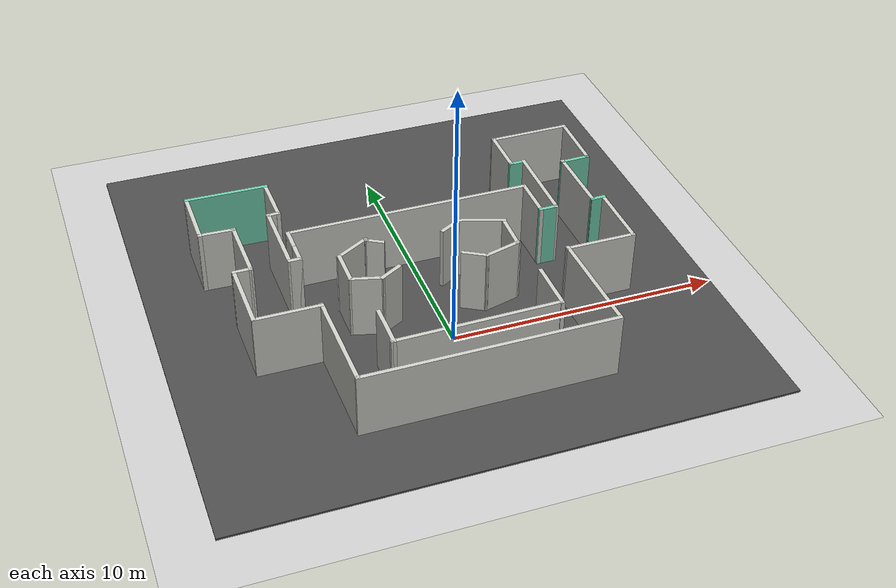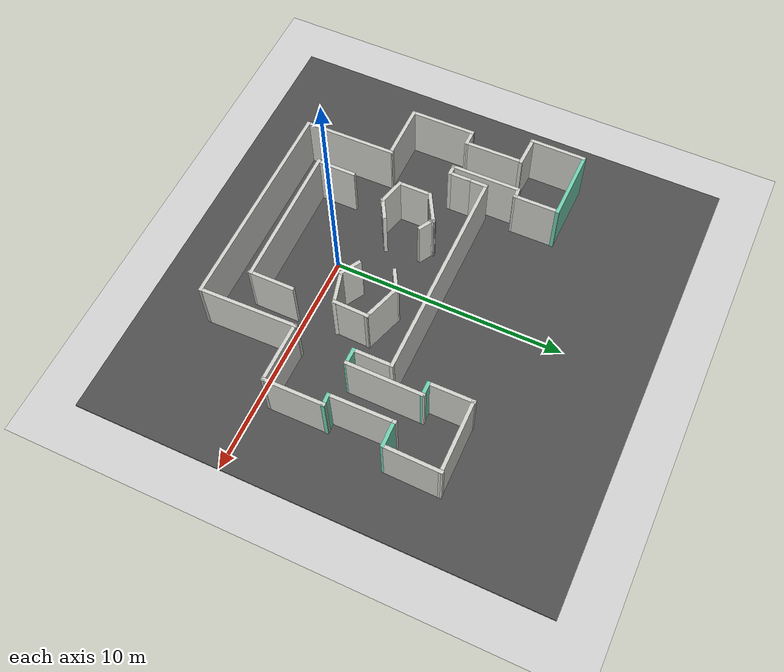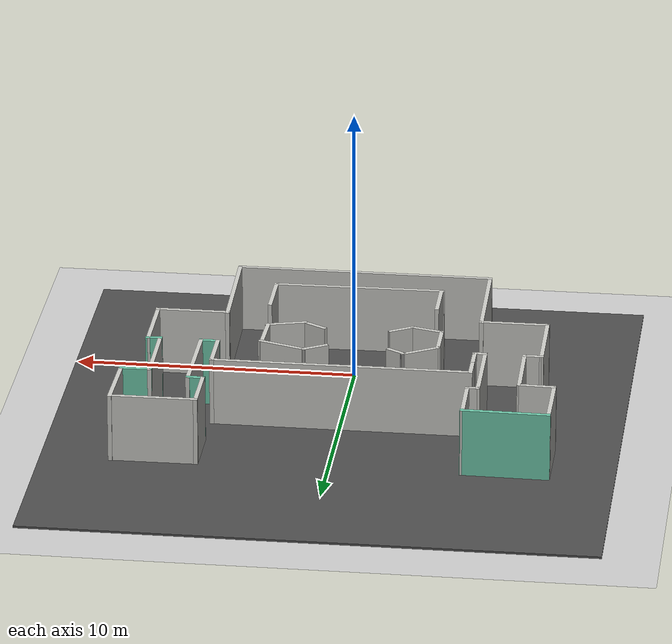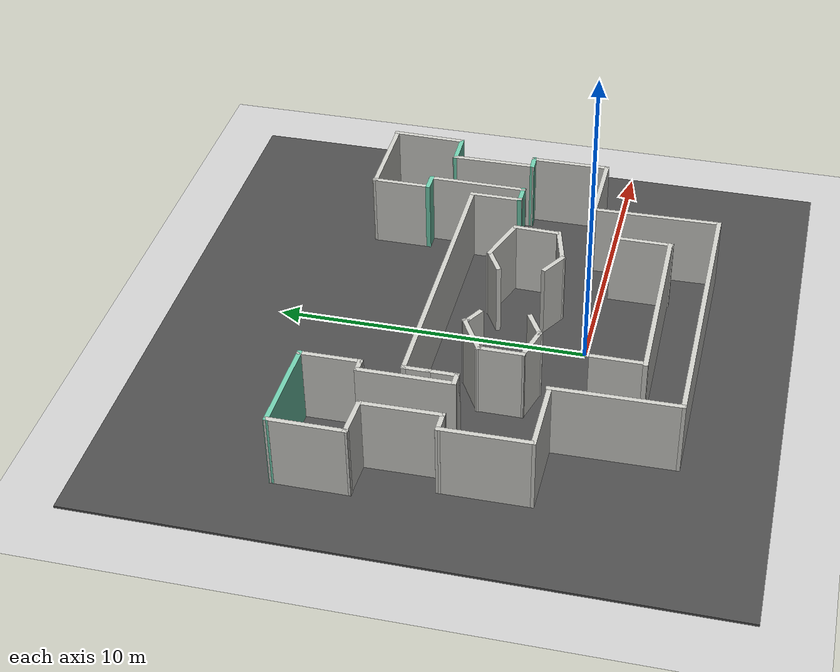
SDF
<sdf version="1.6">
 <world name="default">
  <light name="sun" type="directional">
   <pose>0 0 10 0 -0 0</pose>
   <diffuse>0.8 0.8 0.8 1</diffuse>
   <specular>0.2 0.2 0.2 1</specular>
   <attenuation>
    <range>1000</range>
    <constant>0.9</constant>
    <linear>0.01</linear>
    <quadratic>0.001</quadratic>
   </attenuation>
   <direction>-0.5 0.1 -0.9</direction>
  </light>
  <model name="ground_plane">
   <static>1</static>
   <link name="link">
    <collision name="collision">
     <geometry><plane><normal>0 0 1</normal><size>100 100</size></plane></geometry>
     <surface>
      <contact><collide_bitmask>65535</collide_bitmask></contact>
      <friction><ode><mu>100</mu><mu2>50</mu2></ode></friction>
     </surface>
    </collision>
    <visual name="visual">
     <cast_shadows>0</cast_shadows>
     <geometry><plane><normal>0 0 1</normal><size>100 100</size></plane></geometry>
     <material>
      <script><uri>file://media/materials/scripts/gazebo.material</uri><name>Gazebo/Grey</name></script>
     </material>
    </visual>
   </link>
  </model>
  <gravity>0 0 -9.8</gravity>
  <magnetic_field>6e-06 2.3e-05 -4.2e-05</magnetic_field>
  <atmosphere type="adiabatic"/>
  <physics name="default_physics" default="0" type="ode">
   <max_step_size>0.001</max_step_size>
   <real_time_factor>1</real_time_factor>
   <real_time_update_rate>1000</real_time_update_rate>
  </physics>
  <scene><ambient>0.4 0.4 0.4 1</ambient><background>0.7 0.7 0.7 1</background><shadows>1</shadows></scene>
  <spherical_coordinates>
   <surface_model>EARTH_WGS84</surface_model>
   <latitude_deg>0</latitude_deg>
   <longitude_deg>0</longitude_deg>
   <elevation>0</elevation>
   <heading_deg>0</heading_deg>
  </spherical_coordinates>
  <model name="ROBO_WORLD">
   <pose>-0.02375 2.26092 0 0 -0 0</pose>
   <link name="Wall_0">
    <collision name="Wall_0_Collision">
     <geometry><box><size>1 0.15 2.5</size></box></geometry>
     <pose>0 0 1.25 0 -0 0</pose>
    </collision>
    <visual name="Wall_0_Visual">
     <pose>0 0 1.25 0 -0 0</pose>
     <geometry><box><size>1 0.15 2.5</size></box></geometry>
     <material>
      <script><uri>file://media/materials/scripts/gazebo.material</uri><name>Gazebo/CeilingTiled</name></script>
      <ambient>0.435294 0.796078 0.67451 1</ambient>
     </material>
     <meta><layer>0</layer></meta>
    </visual>
    <pose>-4.59188 1.20908 0 0 -0 -1.5708</pose>
   </link>
   <link name="Wall_1">
    <collision name="Wall_1_Collision">
     <geometry><box><size>0.503386 0.15 2.5</size></box></geometry>
     <pose>0 0 1.25 0 -0 0</pose>
    </collision>
    <visual name="Wall_1_Visual">
     <pose>0 0 1.25 0 -0 0</pose>
     <geometry><box><size>0.503386 0.15 2.5</size></box></geometry>
     <material>
      <script><uri>file://media/materials/scripts/gazebo.material</uri><name>Gazebo/CeilingTiled</name></script>
      <ambient>0.435294 0.796078 0.67451 1</ambient>
     </material>
     <meta><layer>0</layer></meta>
    </visual>
    <pose>-4.76857 0.78408 0 0 -0 3.14159</pose>
   </link>
   <link name="Wall_10">
    <collision name="Wall_10_Collision">
     <geometry><box><size>2.83268 0.15 2.5</size></box></geometry>
     <pose>0 0 1.25 0 -0 0</pose>
    </collision>
    <visual name="Wall_10_Visual">
     <pose>0 0 1.25 0 -0 0</pose>
     <geometry><box><size>2.83268 0.15 2.5</size></box></geometry>
     <material>
      <script><uri>file://media/materials/scripts/gazebo.material</uri><name>Gazebo/CeilingTiled</name></script>
      <ambient>0.435294 0.796078 0.67451 1</ambient>
     </material>
     <meta><layer>0</layer></meta>
    </visual>
    <pose>-6.93101 -0.557216 0 0 -0 -1.56269</pose>
   </link>
   <link name="Wall_11">
    <collision name="Wall_11_Collision">
     <geometry><box><size>2.5 0.15 2.5</size></box></geometry>
     <pose>0 0 1.25 0 -0 0</pose>
    </collision>
    <visual name="Wall_11_Visual">
     <pose>0 0 1.25 0 -0 0</pose>
     <geometry><box><size>2.5 0.15 2.5</size></box></geometry>
     <material>
      <script><uri>file://media/materials/scripts/gazebo.material</uri><name>Gazebo/CeilingTiled</name></script>
      <ambient>0.435294 0.796078 0.67451 1</ambient>
     </material>
     <meta><layer>0</layer></meta>
    </visual>
    <pose>-5.74514 -1.93094 0 0 -0 0</pose>
   </link>
   <link name="Wall_12">
    <collision name="Wall_12_Collision">
     <geometry><box><size>3.99317 0.15 2.5</size></box></geometry>
     <pose>0 0 1.25 0 -0 0</pose>
    </collision>
    <visual name="Wall_12_Visual">
     <pose>0 0 1.25 0 -0 0</pose>
     <geometry><box><size>3.99317 0.15 2.5</size></box></geometry>
     <material>
      <script><uri>file://media/materials/scripts/gazebo.material</uri><name>Gazebo/CeilingTiled</name></script>
      <ambient>0.435294 0.796078 0.67451 1</ambient>
     </material>
     <meta><layer>0</layer></meta>
    </visual>
    <pose>-4.54298 -3.8199 0 0 -0 -1.55666</pose>
   </link>
   <link name="Wall_13">
    <collision name="Wall_13_Collision">
     <geometry><box><size>9.25 0.15 2.5</size></box></geometry>
     <pose>0 0 1.25 0 -0 0</pose>
    </collision>
    <visual name="Wall_13_Visual">
     <pose>0 0 1.25 0 -0 0</pose>
     <geometry><box><size>9.25 0.15 2.5</size></box></geometry>
     <material>
      <script><uri>file://media/materials/scripts/gazebo.material</uri><name>Gazebo/CeilingTiled</name></script>
      <ambient>0.435294 0.796078 0.67451 1</ambient>
     </material>
     <meta><layer>0</layer></meta>
    </visual>
    <pose>0.034181 -5.77933 0 0 -0 0</pose>
   </link>
   <link name="Wall_14">
    <collision name="Wall_14_Collision">
     <geometry><box><size>4.21004 0.15 2.5</size></box></geometry>
     <pose>0 0 1.25 0 -0 0</pose>
    </collision>
    <visual name="Wall_14_Visual">
     <pose>0 0 1.25 0 -0 0</pose>
     <geometry><box><size>4.21004 0.15 2.5</size></box></geometry>
     <material>
      <script><uri>file://media/materials/scripts/gazebo.material</uri><name>Gazebo/CeilingTiled</name></script>
      <ambient>0.435294 0.796078 0.67451 1</ambient>
     </material>
     <meta><layer>0</layer></meta>
    </visual>
    <pose>4.54081 -3.71174 0 0 -0 1.59216</pose>
   </link>
   <link name="Wall_15">
    <collision name="Wall_15_Collision">
     <geometry><box><size>2.6522 0.15 2.5</size></box></geometry>
     <pose>0 0 1.25 0 -0 0</pose>
    </collision>
    <visual name="Wall_15_Visual">
     <pose>0 0 1.25 0 -0 0</pose>
     <geometry><box><size>2.6522 0.15 2.5</size></box></geometry>
     <material>
      <script><uri>file://media/materials/scripts/gazebo.material</uri><name>Gazebo/CeilingTiled</name></script>
      <ambient>0.435294 0.796078 0.67451 1</ambient>
     </material>
     <meta><layer>0</layer></meta>
    </visual>
    <pose>5.74853 -1.71462 0 0 -0 0</pose>
   </link>
   <link name="Wall_16">
    <collision name="Wall_16_Collision">
     <geometry><box><size>2.61629 0.15 2.5</size></box></geometry>
     <pose>0 0 1.25 0 -0 0</pose>
    </collision>
    <visual name="Wall_16_Visual">
     <pose>0 0 1.25 0 -0 0</pose>
     <geometry><box><size>2.61629 0.15 2.5</size></box></geometry>
     <material>
      <script><uri>file://media/materials/scripts/gazebo.material</uri><name>Gazebo/CeilingTiled</name></script>
      <ambient>0.435294 0.796078 0.67451 1</ambient>
     </material>
     <meta><layer>0</layer></meta>
    </visual>
    <pose>6.99411 -0.449054 0 0 -0 1.57528</pose>
   </link>
   <link name="Wall_17">
    <collision name="Wall_17_Collision">
     <geometry><box><size>0.598328 0.15 2.5</size></box></geometry>
     <pose>0 0 1.25 0 -0 0</pose>
    </collision>
    <visual name="Wall_17_Visual">
     <pose>0 0 1.25 0 -0 0</pose>
     <geometry><box><size>0.598328 0.15 2.5</size></box></geometry>
     <material>
      <script><uri>file://media/materials/scripts/gazebo.material</uri><name>Gazebo/Grey</name></script>
      <ambient>0.435294 0.796078 0.67451 1</ambient>
     </material>
     <meta><layer>0</layer></meta>
    </visual>
    <pose>6.78642 0.773209 0 0 -0 -3.09308</pose>
   </link>
   <link name="Wall_18">
    <collision name="Wall_18_Collision">
     <geometry><box><size>2.81541 0.15 2.5</size></box></geometry>
     <pose>0 0 1.25 0 -0 0</pose>
    </collision>
    <visual name="Wall_18_Visual">
     <pose>0 0 1.25 0 -0 0</pose>
     <geometry><box><size>2.81541 0.15 2.5</size></box></geometry>
     <material>
      <script><uri>file://media/materials/scripts/gazebo.material</uri><name>Gazebo/CeilingTiled</name></script>
      <ambient>0.435294 0.796078 0.67451 1</ambient>
     </material>
     <meta><layer>0</layer></meta>
    </visual>
    <pose>6.55165 2.11674 0 0 -0 1.57895</pose>
   </link>
   <link name="Wall_19">
    <collision name="Wall_19_Collision">
     <geometry><box><size>1.16405 0.15 2.5</size></box></geometry>
     <pose>0 0 1.25 0 -0 0</pose>
    </collision>
    <visual name="Wall_19_Visual">
     <pose>0 0 1.25 0 -0 0</pose>
     <geometry><box><size>1.16405 0.15 2.5</size></box></geometry>
     <material>
      <script><uri>file://media/materials/scripts/gazebo.material</uri><name>Gazebo/Grey</name></script>
      <ambient>0.435294 0.796078 0.67451 1</ambient>
     </material>
     <meta><layer>0</layer></meta>
    </visual>
    <pose>7.04734 3.43853 0 0 -0 0.021459</pose>
   </link>
   <link name="Wall_2">
    <collision name="Wall_2_Collision">
     <geometry><box><size>3.03921 0.15 2.5</size></box></geometry>
     <pose>0 0 1.25 0 -0 0</pose>
    </collision>
    <visual name="Wall_2_Visual">
     <pose>0 0 1.25 0 -0 0</pose>
     <geometry><box><size>3.03921 0.15 2.5</size></box></geometry>
     <material>
      <script><uri>file://media/materials/scripts/gazebo.material</uri><name>Gazebo/CeilingTiled</name></script>
      <ambient>0.435294 0.796078 0.67451 1</ambient>
     </material>
     <meta><layer>0</layer></meta>
    </visual>
    <pose>-4.96993 2.22866 0 0 -0 1.57649</pose>
   </link>
   <link name="Wall_20">
    <collision name="Wall_20_Collision">
     <geometry><box><size>2.45719 0.15 2.5</size></box></geometry>
     <pose>0 0 1.25 0 -0 0</pose>
    </collision>
    <visual name="Wall_20_Visual">
     <pose>0 0 1.25 0 -0 0</pose>
     <geometry><box><size>2.45719 0.15 2.5</size></box></geometry>
     <material>
      <script><uri>file://media/materials/scripts/gazebo.material</uri><name>Gazebo/CeilingTiled</name></script>
      <ambient>0.435294 0.796078 0.67451 1</ambient>
     </material>
     <meta><layer>0</layer></meta>
    </visual>
    <pose>7.57564 4.62453 0 0 -0 1.55195</pose>
   </link>
   <link name="Wall_21">
    <collision name="Wall_21_Collision">
     <geometry><box><size>3.14154 0.15 2.5</size></box></geometry>
     <pose>0 0 1.25 0 -0 0</pose>
    </collision>
    <visual name="Wall_21_Visual">
     <pose>0 0 1.25 0 -0 0</pose>
     <geometry><box><size>3.14154 0.15 2.5</size></box></geometry>
     <material>
      <script><uri>file://media/materials/scripts/gazebo.material</uri><name>Gazebo/CeilingTiled</name></script>
      <ambient>0.435294 0.796078 0.67451 1</ambient>
     </material>
     <meta><layer>0</layer></meta>
    </visual>
    <pose>6.10165 5.74531 0 0 -0 -3.13432</pose>
   </link>
   <link name="Wall_22">
    <collision name="Wall_22_Collision">
     <geometry><box><size>1.95669 0.15 2.5</size></box></geometry>
     <pose>0 0 1.25 0 -0 0</pose>
    </collision>
    <visual name="Wall_22_Visual">
     <pose>0 0 1.25 0 -0 0</pose>
     <geometry><box><size>1.95669 0.15 2.5</size></box></geometry>
     <material>
      <script><uri>file://media/materials/scripts/gazebo.material</uri><name>Gazebo/CeilingTiled</name></script>
      <ambient>0.435294 0.796078 0.67451 1</ambient>
     </material>
     <meta><layer>0</layer></meta>
    </visual>
    <pose>4.60592 4.85283 0 0 -0 -1.5708</pose>
   </link>
   <link name="Wall_23">
    <collision name="Wall_23_Collision">
     <geometry><box><size>0.673945 0.15 2.5</size></box></geometry>
     <pose>0 0 1.25 0 -0 0</pose>
    </collision>
    <visual name="Wall_23_Visual">
     <pose>0 0 1.25 0 -0 0</pose>
     <geometry><box><size>0.673945 0.15 2.5</size></box></geometry>
     <material>
      <script><uri>file://media/materials/scripts/gazebo.material</uri><name>Gazebo/Grey</name></script>
      <ambient>0.435294 0.796078 0.67451 1</ambient>
     </material>
     <meta><layer>0</layer></meta>
    </visual>
    <pose>4.86789 3.92775 0 0 -0 0</pose>
   </link>
   <link name="Wall_24">
    <collision name="Wall_24_Collision">
     <geometry><box><size>3.31548 0.15 2.5</size></box></geometry>
     <pose>0 0 1.25 0 -0 0</pose>
    </collision>
    <visual name="Wall_24_Visual">
     <pose>0 0 1.25 0 -0 0</pose>
     <geometry><box><size>3.31548 0.15 2.5</size></box></geometry>
     <material>
      <script><uri>file://media/materials/scripts/gazebo.material</uri><name>Gazebo/CeilingTiled</name></script>
      <ambient>0.435294 0.796078 0.67451 1</ambient>
     </material>
     <meta><layer>0</layer></meta>
    </visual>
    <pose>5.11899 2.36678 0 0 -0 -1.57767</pose>
   </link>
   <link name="Wall_25">
    <collision name="Wall_25_Collision">
     <geometry><box><size>0.75 0.15 2.5</size></box></geometry>
     <pose>0 0 1.25 0 -0 0</pose>
    </collision>
    <visual name="Wall_25_Visual">
     <pose>0 0 1.25 0 -0 0</pose>
     <geometry><box><size>0.75 0.15 2.5</size></box></geometry>
     <material>
      <script><uri>file://media/materials/scripts/gazebo.material</uri><name>Gazebo/Grey</name></script>
      <ambient>0.435294 0.796078 0.67451 1</ambient>
     </material>
     <meta><layer>0</layer></meta>
    </visual>
    <pose>4.80812 0.78408 0 0 -0 3.14159</pose>
   </link>
   <link name="Wall_26">
    <collision name="Wall_26_Collision">
     <geometry><box><size>1.75 0.15 2.5</size></box></geometry>
     <pose>0 0 1.25 0 -0 0</pose>
    </collision>
    <visual name="Wall_26_Visual">
     <pose>0 0 1.25 0 -0 0</pose>
     <geometry><box><size>1.75 0.15 2.5</size></box></geometry>
     <material>
      <script><uri>file://media/materials/scripts/gazebo.material</uri><name>Gazebo/CeilingTiled</name></script>
      <ambient>0.435294 0.796078 0.67451 1</ambient>
     </material>
     <meta><layer>0</layer></meta>
    </visual>
    <pose>4.50812 1.58408 0 0 -0 1.5708</pose>
   </link>
   <link name="Wall_27">
    <collision name="Wall_27_Collision">
     <geometry><box><size>9.25 0.15 2.5</size></box></geometry>
     <pose>0 0 1.25 0 -0 0</pose>
    </collision>
    <visual name="Wall_27_Visual">
     <pose>0 0 1.25 0 -0 0</pose>
     <geometry><box><size>9.25 0.15 2.5</size></box></geometry>
     <material>
      <script><uri>file://media/materials/scripts/gazebo.material</uri><name>Gazebo/CeilingTiled</name></script>
      <ambient>0.435294 0.796078 0.67451 1</ambient>
     </material>
     <meta><layer>0</layer></meta>
    </visual>
    <pose>-0.041879 2.38408 0 0 -0 3.14159</pose>
   </link>
   <link name="Wall_28">
    <collision name="Wall_28_Collision">
     <geometry><box><size>0.9 0.15 2.5</size></box></geometry>
     <pose>0 0 1.25 0 -0 0</pose>
    </collision>
    <visual name="Wall_28_Visual">
     <pose>0 0 1.25 0 -0 0</pose>
     <geometry><box><size>0.9 0.15 2.5</size></box></geometry>
     <material>
      <script><uri>file://media/materials/scripts/gazebo.material</uri><name>Gazebo/CeilingTiled</name></script>
      <ambient>0.435294 0.796078 0.67451 1</ambient>
     </material>
     <meta><layer>0</layer></meta>
    </visual>
    <pose>-4.59188 2.00908 0 0 -0 -1.5708</pose>
   </link>
   <link name="Wall_3">
    <collision name="Wall_3_Collision">
     <geometry><box><size>0.503768 0.15 2.5</size></box></geometry>
     <pose>0 0 1.25 0 -0 0</pose>
    </collision>
    <visual name="Wall_3_Visual">
     <pose>0 0 1.25 0 -0 0</pose>
     <geometry><box><size>0.503768 0.15 2.5</size></box></geometry>
     <material>
      <script><uri>file://media/materials/scripts/gazebo.material</uri><name>Gazebo/CeilingTiled</name></script>
      <ambient>0.435294 0.796078 0.67451 1</ambient>
     </material>
     <meta><layer>0</layer></meta>
    </visual>
    <pose>-4.78501 3.68146 0 0 -0 0.04649</pose>
   </link>
   <link name="Wall_35">
    <collision name="Wall_35_Collision">
     <geometry><box><size>1.80867 0.15 2.5</size></box></geometry>
     <pose>0 0 1.25 0 -0 0</pose>
    </collision>
    <visual name="Wall_35_Visual">
     <pose>0 0 1.25 0 -0 0</pose>
     <geometry><box><size>1.80867 0.15 2.5</size></box></geometry>
     <material>
      <script><uri>file://media/materials/scripts/gazebo.material</uri><name>Gazebo/CeilingTiled</name></script>
      <ambient>1 1 1 1</ambient>
     </material>
     <meta><layer>0</layer></meta>
    </visual>
    <pose>2.20681 0.865224 0 0 -0 -0.317813</pose>
   </link>
   <link name="Wall_36">
    <collision name="Wall_36_Collision">
     <geometry><box><size>1.56828 0.15 2.5</size></box></geometry>
     <pose>0 0 1.25 0 -0 0</pose>
    </collision>
    <visual name="Wall_36_Visual">
     <pose>0 0 1.25 0 -0 0</pose>
     <geometry><box><size>1.56828 0.15 2.5</size></box></geometry>
     <material>
      <script><uri>file://media/materials/scripts/gazebo.material</uri><name>Gazebo/CeilingTiled</name></script>
      <ambient>1 1 1 1</ambient>
     </material>
     <meta><layer>0</layer></meta>
    </visual>
    <pose>2.94693 -0.102805 0 0 -0 -1.59826</pose>
   </link>
   <link name="Wall_37">
    <collision name="Wall_37_Collision">
     <geometry><box><size>1.5 0.15 2.5</size></box></geometry>
     <pose>0 0 1.25 0 -0 0</pose>
    </collision>
    <visual name="Wall_37_Visual">
     <pose>0 0 1.25 0 -0 0</pose>
     <geometry><box><size>1.5 0.15 2.5</size></box></geometry>
     <material>
      <script><uri>file://media/materials/scripts/gazebo.material</uri><name>Gazebo/CeilingTiled</name></script>
      <ambient>1 1 1 1</ambient>
     </material>
     <meta><layer>0</layer></meta>
    </visual>
    <pose>2.30366 -0.986379 0 0 -0 -2.87979</pose>
   </link>
   <link name="Wall_39">
    <collision name="Wall_39_Collision">
     <geometry><box><size>1.75 0.15 2.5</size></box></geometry>
     <pose>0 0 1.25 0 -0 0</pose>
    </collision>
    <visual name="Wall_39_Visual">
     <pose>0 0 1.25 0 -0 0</pose>
     <geometry><box><size>1.75 0.15 2.5</size></box></geometry>
     <material>
      <script><uri>file://media/materials/scripts/gazebo.material</uri><name>Gazebo/CeilingTiled</name></script>
      <ambient>1 1 1 1</ambient>
     </material>
     <meta><layer>0</layer></meta>
    </visual>
    <pose>-2.88091 -3.66413 0 0 -0 -1.5708</pose>
   </link>
   <link name="Wall_4">
    <collision name="Wall_4_Collision">
     <geometry><box><size>2.00355 0.15 2.5</size></box></geometry>
     <pose>0 0 1.25 0 -0 0</pose>
    </collision>
    <visual name="Wall_4_Visual">
     <pose>0 0 1.25 0 -0 0</pose>
     <geometry><box><size>2.00355 0.15 2.5</size></box></geometry>
     <material>
      <script><uri>file://media/materials/scripts/gazebo.material</uri><name>Gazebo/CeilingTiled</name></script>
      <ambient>0.435294 0.796078 0.67451 1</ambient>
     </material>
     <meta><layer>0</layer></meta>
    </visual>
    <pose>-4.61654 4.59969 0 0 -0 1.57967</pose>
   </link>
   <link name="Wall_40">
    <collision name="Wall_40_Collision">
     <geometry><box><size>6.1526 0.15 2.5</size></box></geometry>
     <pose>0 0 1.25 0 -0 0</pose>
    </collision>
    <visual name="Wall_40_Visual">
     <pose>0 0 1.25 0 -0 0</pose>
     <geometry><box><size>6.1526 0.15 2.5</size></box></geometry>
     <material>
      <script><uri>file://media/materials/scripts/gazebo.material</uri><name>Gazebo/CeilingTiled</name></script>
      <ambient>1 1 1 1</ambient>
     </material>
     <meta><layer>0</layer></meta>
    </visual>
    <pose>0.08212 -4.4261 0 0 -0 0.012671</pose>
   </link>
   <link name="Wall_41">
    <collision name="Wall_41_Collision">
     <geometry><box><size>2 0.15 2.5</size></box></geometry>
     <pose>0 0 1.25 0 -0 0</pose>
    </collision>
    <visual name="Wall_41_Visual">
     <pose>0 0 1.25 0 -0 0</pose>
     <geometry><box><size>2 0.15 2.5</size></box></geometry>
     <material>
      <script><uri>file://media/materials/scripts/gazebo.material</uri><name>Gazebo/CeilingTiled</name></script>
      <ambient>1 1 1 1</ambient>
     </material>
     <meta><layer>0</layer></meta>
    </visual>
    <pose>3.08318 -3.5011 0 0 -0 1.5708</pose>
   </link>
   <link name="Wall_5">
    <collision name="Wall_5_Collision">
     <geometry><box><size>3.13799 0.15 2.5</size></box></geometry>
     <pose>0 0 1.25 0 -0 0</pose>
    </collision>
    <visual name="Wall_5_Visual">
     <pose>0 0 1.25 0 -0 0</pose>
     <geometry><box><size>3.13799 0.15 2.5</size></box></geometry>
     <material>
      <script><uri>file://media/materials/scripts/gazebo.material</uri><name>Gazebo/Grey</name></script>
      <ambient>0.435294 0.796078 0.67451 1</ambient>
     </material>
     <meta><layer>0</layer></meta>
    </visual>
    <pose>-6.10222 5.5508 0 0 -0 3.12509</pose>
   </link>
   <link name="Wall_53">
    <collision name="Wall_53_Collision">
     <geometry><box><size>1 0.15 2.5</size></box></geometry>
     <pose>0 0 1.25 0 -0 0</pose>
    </collision>
    <visual name="Wall_53_Visual">
     <pose>0 0 1.25 0 -0 0</pose>
     <geometry><box><size>1 0.15 2.5</size></box></geometry>
     <material>
      <script><uri>file://media/materials/scripts/gazebo.material</uri><name>Gazebo/CeilingTiled</name></script>
      <ambient>1 1 1 1</ambient>
     </material>
     <meta><layer>0</layer></meta>
    </visual>
    <pose>1.05095 0.911882 0 0 -0 -2.61799</pose>
   </link>
   <link name="Wall_55">
    <collision name="Wall_55_Collision">
     <geometry><box><size>1 0.15 2.5</size></box></geometry>
     <pose>0 0 1.25 0 -0 0</pose>
    </collision>
    <visual name="Wall_55_Visual">
     <pose>0 0 1.25 0 -0 0</pose>
     <geometry><box><size>1 0.15 2.5</size></box></geometry>
     <material>
      <script><uri>file://media/materials/scripts/gazebo.material</uri><name>Gazebo/CeilingTiled</name></script>
      <ambient>1 1 1 1</ambient>
     </material>
     <meta><layer>0</layer></meta>
    </visual>
    <pose>1.2836 -0.948582 0 0 -0 2.61799</pose>
   </link>
   <link name="Wall_57">
    <collision name="Wall_57_Collision">
     <geometry><box><size>0.75 0.15 2.5</size></box></geometry>
     <pose>0 0 1.25 0 -0 0</pose>
    </collision>
    <visual name="Wall_57_Visual">
     <pose>0 0 1.25 0 -0 0</pose>
     <geometry><box><size>0.75 0.15 2.5</size></box></geometry>
     <material>
      <script><uri>file://media/materials/scripts/gazebo.material</uri><name>Gazebo/CeilingTiled</name></script>
      <ambient>1 1 1 1</ambient>
     </material>
     <meta><layer>0</layer></meta>
    </visual>
    <pose>-1.82564 0.924162 0 0 -0 2.61799</pose>
   </link>
   <link name="Wall_59">
    <collision name="Wall_59_Collision">
     <geometry><box><size>0.209455 0.15 2.5</size></box></geometry>
     <pose>0 0 1.25 0 -0 0</pose>
    </collision>
    <visual name="Wall_59_Visual">
     <pose>0 0 1.25 0 -0 0</pose>
     <geometry><box><size>0.209455 0.15 2.5</size></box></geometry>
     <material>
      <script><uri>file://media/materials/scripts/gazebo.material</uri><name>Gazebo/Grey</name></script>
      <ambient>1 1 1 1</ambient>
     </material>
     <meta><layer>0</layer></meta>
    </visual>
    <pose>-2.08598 1.10389 0 0 -0 1.58886</pose>
   </link>
   <link name="Wall_6">
    <collision name="Wall_6_Collision">
     <geometry><box><size>2.4468 0.15 2.5</size></box></geometry>
     <pose>0 0 1.25 0 -0 0</pose>
    </collision>
    <visual name="Wall_6_Visual">
     <pose>0 0 1.25 0 -0 0</pose>
     <geometry><box><size>2.4468 0.15 2.5</size></box></geometry>
     <material>
      <script><uri>file://media/materials/scripts/gazebo.material</uri><name>Gazebo/CeilingTiled</name></script>
      <ambient>0.435294 0.796078 0.67451 1</ambient>
     </material>
     <meta><layer>0</layer></meta>
    </visual>
    <pose>-7.59613 4.41062 0 0 -0 -1.5708</pose>
   </link>
   <link name="Wall_60">
    <collision name="Wall_60_Collision">
     <geometry><box><size>1.5 0.15 2.5</size></box></geometry>
     <pose>0 0 1.25 0 -0 0</pose>
    </collision>
    <visual name="Wall_60_Visual">
     <pose>0 0 1.25 0 -0 0</pose>
     <geometry><box><size>1.5 0.15 2.5</size></box></geometry>
     <material>
      <script><uri>file://media/materials/scripts/gazebo.material</uri><name>Gazebo/CeilingTiled</name></script>
      <ambient>1 1 1 1</ambient>
     </material>
     <meta><layer>0</layer></meta>
    </visual>
    <pose>-2.67109 0.796107 0 0 -0 -2.61799</pose>
   </link>
   <link name="Wall_61">
    <collision name="Wall_61_Collision">
     <geometry><box><size>1.5 0.15 2.5</size></box></geometry>
     <pose>0 0 1.25 0 -0 0</pose>
    </collision>
    <visual name="Wall_61_Visual">
     <pose>0 0 1.25 0 -0 0</pose>
     <geometry><box><size>1.5 0.15 2.5</size></box></geometry>
     <material>
      <script><uri>file://media/materials/scripts/gazebo.material</uri><name>Gazebo/CeilingTiled</name></script>
      <ambient>1 1 1 1</ambient>
     </material>
     <meta><layer>0</layer></meta>
    </visual>
    <pose>-3.25565 -0.216393 0 0 -0 -1.5708</pose>
   </link>
   <link name="Wall_62">
    <collision name="Wall_62_Collision">
     <geometry><box><size>1.25 0.15 2.5</size></box></geometry>
     <pose>0 0 1.25 0 -0 0</pose>
    </collision>
    <visual name="Wall_62_Visual">
     <pose>0 0 1.25 0 -0 0</pose>
     <geometry><box><size>1.25 0.15 2.5</size></box></geometry>
     <material>
      <script><uri>file://media/materials/scripts/gazebo.material</uri><name>Gazebo/CeilingTiled</name></script>
      <ambient>1 1 1 1</ambient>
     </material>
     <meta><layer>0</layer></meta>
    </visual>
    <pose>-2.72439 -1.03374 0 0 -0 -0.261799</pose>
   </link>
   <link name="Wall_63">
    <collision name="Wall_63_Collision">
     <geometry><box><size>1 0.15 2.5</size></box></geometry>
     <pose>0 0 1.25 0 -0 0</pose>
    </collision>
    <visual name="Wall_63_Visual">
     <pose>0 0 1.25 0 -0 0</pose>
     <geometry><box><size>1 0.15 2.5</size></box></geometry>
     <material>
      <script><uri>file://media/materials/scripts/gazebo.material</uri><name>Gazebo/CeilingTiled</name></script>
      <ambient>1 1 1 1</ambient>
     </material>
     <meta><layer>0</layer></meta>
    </visual>
    <pose>-1.82507 -0.963594 0 0 -0 0.523599</pose>
   </link>
   <link name="Wall_7">
    <collision name="Wall_7_Collision">
     <geometry><box><size>1.38824 0.15 2.5</size></box></geometry>
     <pose>0 0 1.25 0 -0 0</pose>
    </collision>
    <visual name="Wall_7_Visual">
     <pose>0 0 1.25 0 -0 0</pose>
     <geometry><box><size>1.38824 0.15 2.5</size></box></geometry>
     <material>
      <script><uri>file://media/materials/scripts/gazebo.material</uri><name>Gazebo/CeilingTiled</name></script>
      <ambient>0.435294 0.796078 0.67451 1</ambient>
     </material>
     <meta><layer>0</layer></meta>
    </visual>
    <pose>-6.97722 3.254 0 0 -0 -0.039826</pose>
   </link>
   <link name="Wall_8">
    <collision name="Wall_8_Collision">
     <geometry><box><size>2.59548 0.15 2.5</size></box></geometry>
     <pose>0 0 1.25 0 -0 0</pose>
    </collision>
    <visual name="Wall_8_Visual">
     <pose>0 0 1.25 0 -0 0</pose>
     <geometry><box><size>2.59548 0.15 2.5</size></box></geometry>
     <material>
      <script><uri>file://media/materials/scripts/gazebo.material</uri><name>Gazebo/CeilingTiled</name></script>
      <ambient>0.435294 0.796078 0.67451 1</ambient>
     </material>
     <meta><layer>0</layer></meta>
    </visual>
    <pose>-6.35832 2.00671 0 0 -0 -1.55735</pose>
   </link>
   <link name="Wall_9">
    <collision name="Wall_9_Collision">
     <geometry><box><size>0.75 0.15 2.5</size></box></geometry>
     <pose>0 0 1.25 0 -0 0</pose>
    </collision>
    <visual name="Wall_9_Visual">
     <pose>0 0 1.25 0 -0 0</pose>
     <geometry><box><size>0.75 0.15 2.5</size></box></geometry>
     <material>
      <script><uri>file://media/materials/scripts/gazebo.material</uri><name>Gazebo/CeilingTiled</name></script>
      <ambient>0.435294 0.796078 0.67451 1</ambient>
     </material>
     <meta><layer>0</layer></meta>
    </visual>
    <pose>-6.64188 0.78408 0 0 -0 3.14159</pose>
   </link>
   <static>1</static>
  </model>
  <model name="asphalt_plane">
   <static>1</static>
   <link name="link">
    <collision name="collision"><geometry><box><size>20 20 0.1</size></box></geometry></collision>
    <visual name="visual">
     <cast_shadows>0</cast_shadows>
     <geometry><box><size>20 20 0.1</size></box></geometry>
     <material>
      <script>
       <uri>model://asphalt_plane/materials/scripts</uri>
       <uri>model://asphalt_plane/materials/textures</uri>
       <name>vrc/asphalt</name>
      </script>
     </material>
    </visual>
   </link>
   <pose>0.060388 3.60235 0 0 -0 0</pose>
  </model>
 </world>
</sdf>
